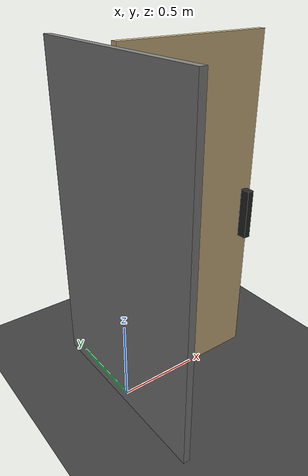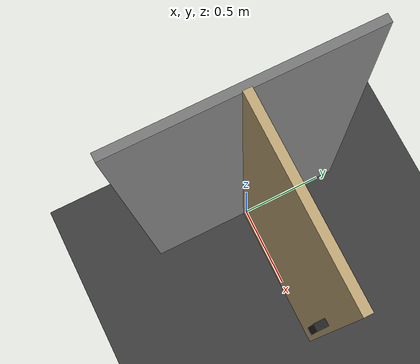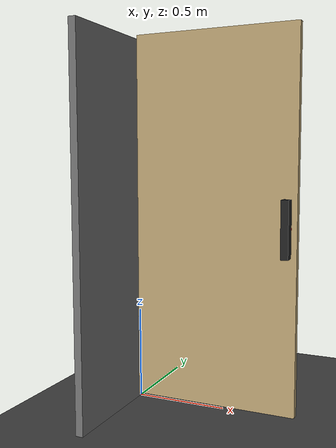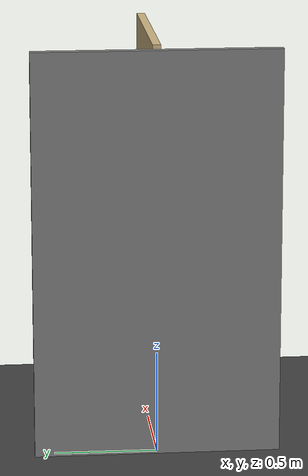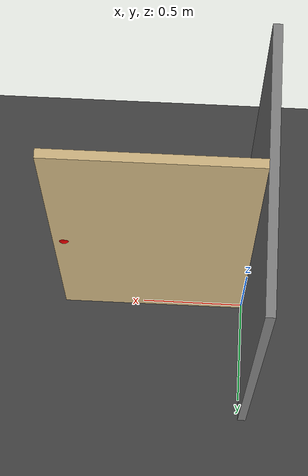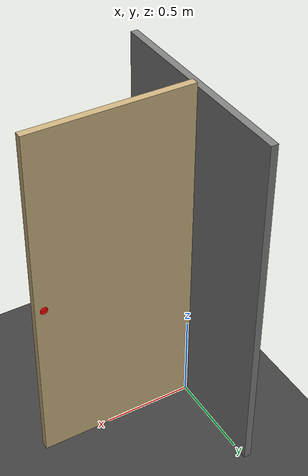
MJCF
<mujoco model="door">
  <compiler angle="radian" autolimits="true"/>
  <option timestep="0.002" gravity="0 0 -9.81" integrator="implicitfast"/>

  <visual>
    <headlight diffuse="0.6 0.6 0.6" ambient="0.3 0.3 0.3" specular="0 0 0"/>
    <global azimuth="-140" elevation="-18" offwidth="960" offheight="720"/>
  </visual>

  <asset>
    <texture type="skybox" builtin="gradient" rgb1="0.8 0.9 1" rgb2="0.3 0.4 0.5" width="256" height="256"/>
    <texture name="grid" type="2d" builtin="checker" rgb1="0.2 0.2 0.2" rgb2="0.3 0.3 0.3" width="300" height="300"/>
    <material name="grid" texture="grid" texrepeat="5 5" reflectance="0.1"/>
  </asset>

  <worldbody>
    <light pos="0.5 -2 3" dir="0 0.4 -1" diffuse="1 1 1"/>
    <geom name="floor" type="plane" size="3 3 0.1" material="grid"/>

    <!-- Wall behind the hinge (visual only). -->
    <geom name="wall" type="box" pos="-0.02 0 1.0" size="0.02 0.6 1.0"
          rgba="0.5 0.5 0.5 1" contype="0" conaffinity="0"/>

    <!-- Door: hinge at world origin, panel in the XZ plane, opens about +Z. -->
    <body name="door" pos="0 0 0">
      <joint name="hinge" type="hinge" pos="0 0 0" axis="0 0 1"
             limited="true" range="-0.17 2.09"
             damping="0.2" frictionloss="3.0"/>
      <geom name="panel" type="box" pos="0.45 0 1.02" size="0.45 0.02 1.0"
            density="600" rgba="0.8 0.7 0.5 1" contype="0" conaffinity="0"/>
      <!-- Real handle geom (not just the site below): a flat panel alone
           gives depth cameras zero 3D structure to key on. Protrudes 6cm
           off the panel face. -->
      <geom name="handle" type="box" pos="0.85 -0.05 1.0" size="0.02 0.03 0.15"
            density="600" rgba="0.15 0.15 0.15 1" contype="0" conaffinity="0"/>
      <site name="handle" pos="0.85 0 1.0" size="0.03" rgba="1 0 0 1"/>
    </body>

    <!-- Wide scene view. -->
    <camera name="view" pos="-0.5 -1.5 2.5" xyaxes="0.97 0.24 0 -0.14 0.56 0.82"/>

    <!-- Presentation camera: 3/4 elevated view framing the door. -->
    <camera name="flowbot_view" pos="1.3 -2.0 2.0" xyaxes="0.9328 0.3605 0 -0.1407 0.3640 0.9206"/>

    <body name="rgbd_camera_mount" pos="-0.9 -1.6 1.3"
          xyaxes="0.7643 -0.6449 0 0.0855 0.1013 0.9912">
      <include file="rgbd_camera.xml"/>
    </body>
  </worldbody>
</mujoco>

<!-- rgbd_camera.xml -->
<mujocoinclude>
  <camera name="rgbd" fovy="58" resolution="640 480"/>
</mujocoinclude>
